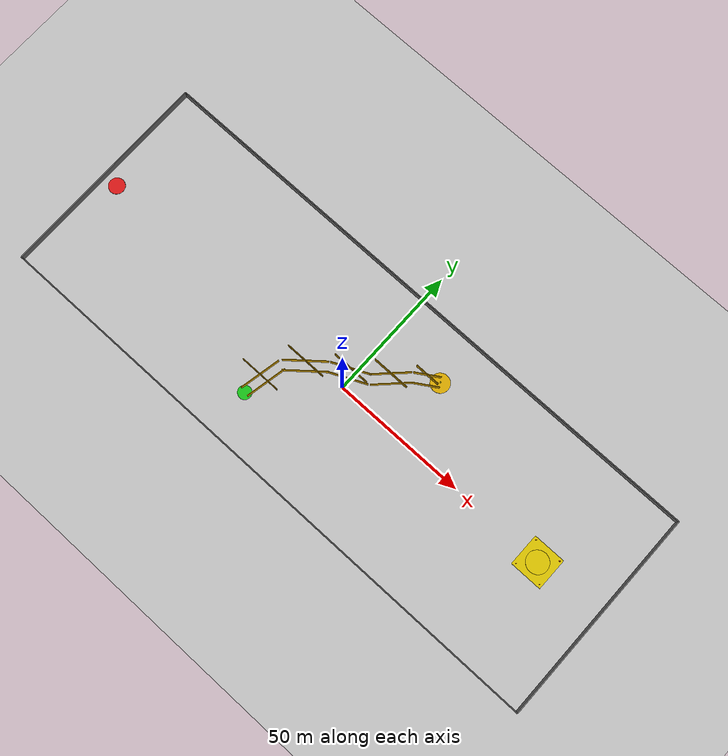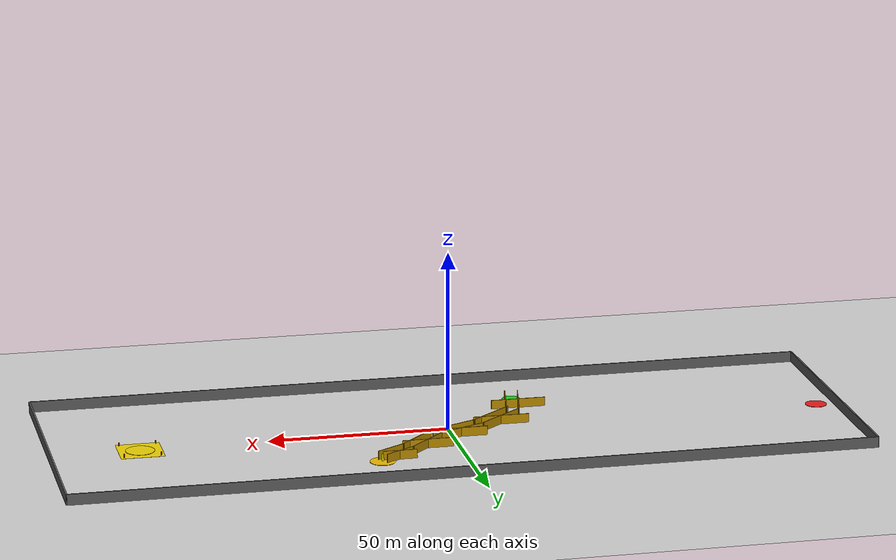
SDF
<sdf version="1.6">
 <world name="navitas_arena">
  <physics type="ode">
   <max_step_size>0.001</max_step_size>
   <real_time_factor>1</real_time_factor>
   <real_time_update_rate>1000</real_time_update_rate>
   <gravity>0 0 -9.8</gravity>
  </physics>
  <scene><ambient>0.4 0.4 0.4 1</ambient><background>0.7 0.7 0.7 1</background><shadows>true</shadows></scene>
  <light name="sun" type="directional">
   <pose>0 0 100 0 -0 0</pose>
   <diffuse>0.8 0.8 0.8 1</diffuse>
   <specular>0.1 0.1 0.1 1</specular>
   <attenuation>
    <range>1000</range>
    <constant>0.9</constant>
    <linear>0.01</linear>
    <quadratic>0.001</quadratic>
   </attenuation>
   <direction>-0.5 0.1 -0.9</direction>
  </light>
  <model name="ground_plane">
   <static>true</static>
   <link name="link">
    <collision name="collision">
     <geometry><plane><normal>0 0 1</normal><size>300 300</size></plane></geometry>
     <surface><friction><ode><mu>0.8</mu><mu2>0.8</mu2></ode></friction></surface>
    </collision>
    <visual name="visual">
     <cast_shadows>false</cast_shadows>
     <geometry><plane><normal>0 0 1</normal><size>300 300</size></plane></geometry>
     <material>
      <script><uri>file://media/materials/scripts/gazebo.material</uri><name>Gazebo/Grey</name></script>
     </material>
    </visual>
   </link>
  </model>
  <model name="boundary_N">
   <static>true</static>
   <pose>0 40.0 1.5 0 0 0</pose>
   <link name="link">
    <collision name="col"><geometry><box><size>220.0 0.4 3.0</size></box></geometry></collision>
    <visual name="vis">
     <geometry><box><size>220.0 0.4 3.0</size></box></geometry>
     <material><ambient>0.4 0.4 0.4 1</ambient><diffuse>0.4 0.4 0.4 1</diffuse></material>
    </visual>
   </link>
  </model>
  <model name="boundary_S">
   <static>true</static>
   <pose>0 -40.0 1.5 0 0 0</pose>
   <link name="link">
    <collision name="col"><geometry><box><size>220.0 0.4 3.0</size></box></geometry></collision>
    <visual name="vis">
     <geometry><box><size>220.0 0.4 3.0</size></box></geometry>
     <material><ambient>0.4 0.4 0.4 1</ambient><diffuse>0.4 0.4 0.4 1</diffuse></material>
    </visual>
   </link>
  </model>
  <model name="boundary_W">
   <static>true</static>
   <pose>-110.0 0 1.5 0 0 0</pose>
   <link name="link">
    <collision name="col"><geometry><box><size>0.4 80.0 3.0</size></box></geometry></collision>
    <visual name="vis">
     <geometry><box><size>0.4 80.0 3.0</size></box></geometry>
     <material><ambient>0.4 0.4 0.4 1</ambient><diffuse>0.4 0.4 0.4 1</diffuse></material>
    </visual>
   </link>
  </model>
  <model name="boundary_E">
   <static>true</static>
   <pose>110.0 0 1.5 0 0 0</pose>
   <link name="link">
    <collision name="col"><geometry><box><size>0.4 80.0 3.0</size></box></geometry></collision>
    <visual name="vis">
     <geometry><box><size>0.4 80.0 3.0</size></box></geometry>
     <material><ambient>0.4 0.4 0.4 1</ambient><diffuse>0.4 0.4 0.4 1</diffuse></material>
    </visual>
   </link>
  </model>
  <model name="iha_fb_marker">
   <static>true</static>
   <pose>-105.0 0.0 0.05 0 0 0</pose>
   <link name="link">
    <collision name="col">
     <geometry><cylinder><radius>3.0</radius><length>0.1</length></cylinder></geometry>
    </collision>
    <visual name="vis">
     <geometry><cylinder><radius>3.0</radius><length>0.1</length></cylinder></geometry>
     <material><ambient>0.9 0.1 0.1 1</ambient><diffuse>0.9 0.1 0.1 1</diffuse></material>
    </visual>
   </link>
  </model>
  <model name="iha_ib_marker">
   <static>true</static>
   <pose>85.0 0.0 0.05 0 0 0</pose>
   <link name="link">
    <collision name="col">
     <geometry><cylinder><radius>4.0</radius><length>0.1</length></cylinder></geometry>
    </collision>
    <visual name="vis">
     <geometry><cylinder><radius>4.0</radius><length>0.1</length></cylinder></geometry>
     <material><ambient>0.9 0.8 0.0 1</ambient><diffuse>0.9 0.8 0.0 1</diffuse></material>
    </visual>
   </link>
  </model>
  <model name="ika_kb_marker">
   <static>true</static>
   <pose>-23.0 -23.0 0.05 0 0 0</pose>
   <link name="link">
    <collision name="col">
     <geometry><cylinder><radius>2.5</radius><length>0.1</length></cylinder></geometry>
    </collision>
    <visual name="vis">
     <geometry><cylinder><radius>2.5</radius><length>0.1</length></cylinder></geometry>
     <material><ambient>0.1 0.8 0.1 1</ambient><diffuse>0.1 0.8 0.1 1</diffuse></material>
    </visual>
   </link>
  </model>
  <model name="hb_marker">
   <static>true</static>
   <pose>23.0 23.0 0.05 0 0 0</pose>
   <link name="link">
    <collision name="col">
     <geometry><cylinder><radius>3.5</radius><length>0.1</length></cylinder></geometry>
    </collision>
    <visual name="vis">
     <geometry><cylinder><radius>3.5</radius><length>0.1</length></cylinder></geometry>
     <material><ambient>0.9 0.7 0.0 1</ambient><diffuse>0.9 0.7 0.0 1</diffuse></material>
    </visual>
   </link>
  </model>
  <model name="hb_sign">
   <static>true</static>
   <pose>23.0 23.0 1.2 0 0 0</pose>
   <link name="link">
    <collision name="col"><geometry><box><size>0.5 0.05 2.0</size></box></geometry></collision>
    <visual name="vis">
     <geometry><box><size>0.5 0.05 2.0</size></box></geometry>
     <material><ambient>0.9 0.9 0.0 1</ambient><diffuse>0.9 0.9 0.0 1</diffuse></material>
    </visual>
   </link>
  </model>
  <model name="landing_ground">
   <static>true</static>
   <pose>85.0 0.0 0.01 0 0 0</pose>
   <link name="link">
    <collision name="col"><geometry><box><size>12.0 12.0 0.02</size></box></geometry></collision>
    <visual name="vis">
     <geometry><box><size>12.0 12.0 0.02</size></box></geometry>
     <material><ambient>0.9 0.8 0.0 1</ambient><diffuse>0.9 0.8 0.0 1</diffuse></material>
    </visual>
   </link>
  </model>
  <model name="landing_cone_0">
   <static>true</static>
   <pose>80.0 -5.0 0.5 0 0 0</pose>
   <link name="link">
    <collision name="col">
     <geometry><cylinder><radius>0.15</radius><length>1.0</length></cylinder></geometry>
    </collision>
    <visual name="vis">
     <geometry><cylinder><radius>0.15</radius><length>1.0</length></cylinder></geometry>
     <material><ambient>1.0 0.2 0.0 1</ambient><diffuse>1.0 0.2 0.0 1</diffuse></material>
    </visual>
   </link>
  </model>
  <model name="landing_cone_1">
   <static>true</static>
   <pose>80.0 5.0 0.5 0 0 0</pose>
   <link name="link">
    <collision name="col">
     <geometry><cylinder><radius>0.15</radius><length>1.0</length></cylinder></geometry>
    </collision>
    <visual name="vis">
     <geometry><cylinder><radius>0.15</radius><length>1.0</length></cylinder></geometry>
     <material><ambient>1.0 0.2 0.0 1</ambient><diffuse>1.0 0.2 0.0 1</diffuse></material>
    </visual>
   </link>
  </model>
  <model name="landing_cone_2">
   <static>true</static>
   <pose>90.0 -5.0 0.5 0 0 0</pose>
   <link name="link">
    <collision name="col">
     <geometry><cylinder><radius>0.15</radius><length>1.0</length></cylinder></geometry>
    </collision>
    <visual name="vis">
     <geometry><cylinder><radius>0.15</radius><length>1.0</length></cylinder></geometry>
     <material><ambient>1.0 0.2 0.0 1</ambient><diffuse>1.0 0.2 0.0 1</diffuse></material>
    </visual>
   </link>
  </model>
  <model name="landing_cone_3">
   <static>true</static>
   <pose>90.0 5.0 0.5 0 0 0</pose>
   <link name="link">
    <collision name="col">
     <geometry><cylinder><radius>0.15</radius><length>1.0</length></cylinder></geometry>
    </collision>
    <visual name="vis">
     <geometry><cylinder><radius>0.15</radius><length>1.0</length></cylinder></geometry>
     <material><ambient>1.0 0.2 0.0 1</ambient><diffuse>1.0 0.2 0.0 1</diffuse></material>
    </visual>
   </link>
  </model>
  <model name="ika_wall_L_0">
   <static>true</static>
   <pose>-23.21601618245911 -15.156796763508178 1.25 0 0 0</pose>
   <link name="link">
    <collision name="col"><geometry><box><size>15.297058540778355 0.2 2.5</size></box></geometry></collision>
    <visual name="vis">
     <geometry><box><size>15.297058540778355 0.2 2.5</size></box></geometry>
     <material><ambient>0.8 0.6 0.0 1</ambient><diffuse>0.8 0.6 0.0 1</diffuse></material>
    </visual>
   </link>
  </model>
  <model name="ika_wall_R_0">
   <static>true</static>
   <pose>-19.78398381754089 -15.843203236491822 1.25 0 0 1.373400766945016</pose>
   <link name="link">
    <collision name="col"><geometry><box><size>15.297058540778355 0.2 2.5</size></box></geometry></collision>
    <visual name="vis">
     <geometry><box><size>15.297058540778355 0.2 2.5</size></box></geometry>
     <material><ambient>0.8 0.6 0.0 1</ambient><diffuse>0.8 0.6 0.0 1</diffuse></material>
    </visual>
   </link>
  </model>
  <model name="ika_wall_L2_0">
   <static>true</static>
   <pose>-23.21601618245911 -15.156796763508178 1.25 0 0 1.373400766945016</pose>
   <link name="link">
    <collision name="col"><geometry><box><size>15.297058540778355 0.2 2.5</size></box></geometry></collision>
    <visual name="vis">
     <geometry><box><size>15.297058540778355 0.2 2.5</size></box></geometry>
     <material><ambient>0.8 0.6 0.0 1</ambient><diffuse>0.8 0.6 0.0 1</diffuse></material>
    </visual>
   </link>
  </model>
  <model name="ika_wall_L_1">
   <static>true</static>
   <pose>-15.12032269941284 -1.6556127607045923 1.25 0 0 0</pose>
   <link name="link">
    <collision name="col"><geometry><box><size>15.620499351813308 0.2 2.5</size></box></geometry></collision>
    <visual name="vis">
     <geometry><box><size>15.620499351813308 0.2 2.5</size></box></geometry>
     <material><ambient>0.8 0.6 0.0 1</ambient><diffuse>0.8 0.6 0.0 1</diffuse></material>
    </visual>
   </link>
  </model>
  <model name="ika_wall_R_1">
   <static>true</static>
   <pose>-12.87967730058716 -4.344387239295408 1.25 0 0 0.6947382761967031</pose>
   <link name="link">
    <collision name="col"><geometry><box><size>15.620499351813308 0.2 2.5</size></box></geometry></collision>
    <visual name="vis">
     <geometry><box><size>15.620499351813308 0.2 2.5</size></box></geometry>
     <material><ambient>0.8 0.6 0.0 1</ambient><diffuse>0.8 0.6 0.0 1</diffuse></material>
    </visual>
   </link>
  </model>
  <model name="ika_wall_L2_1">
   <static>true</static>
   <pose>-15.12032269941284 -1.6556127607045923 1.25 0 0 0.6947382761967031</pose>
   <link name="link">
    <collision name="col"><geometry><box><size>15.620499351813308 0.2 2.5</size></box></geometry></collision>
    <visual name="vis">
     <geometry><box><size>15.620499351813308 0.2 2.5</size></box></geometry>
     <material><ambient>0.8 0.6 0.0 1</ambient><diffuse>0.8 0.6 0.0 1</diffuse></material>
    </visual>
   </link>
  </model>
  <model name="ika_wall_L_2">
   <static>true</static>
   <pose>-2.233351810558057 6.58892892287579 1.25 0 0 0</pose>
   <link name="link">
    <collision name="col"><geometry><box><size>14.317821063276353 0.2 2.5</size></box></geometry></collision>
    <visual name="vis">
     <geometry><box><size>14.317821063276353 0.2 2.5</size></box></geometry>
     <material><ambient>0.8 0.6 0.0 1</ambient><diffuse>0.8 0.6 0.0 1</diffuse></material>
    </visual>
   </link>
  </model>
  <model name="ika_wall_R_2">
   <static>true</static>
   <pose>-0.7666481894419429 3.41107107712421 1.25 0 0 0.43240777557053783</pose>
   <link name="link">
    <collision name="col"><geometry><box><size>14.317821063276353 0.2 2.5</size></box></geometry></collision>
    <visual name="vis">
     <geometry><box><size>14.317821063276353 0.2 2.5</size></box></geometry>
     <material><ambient>0.8 0.6 0.0 1</ambient><diffuse>0.8 0.6 0.0 1</diffuse></material>
    </visual>
   </link>
  </model>
  <model name="ika_wall_L2_2">
   <static>true</static>
   <pose>-2.233351810558057 6.58892892287579 1.25 0 0 0.43240777557053783</pose>
   <link name="link">
    <collision name="col"><geometry><box><size>14.317821063276353 0.2 2.5</size></box></geometry></collision>
    <visual name="vis">
     <geometry><box><size>14.317821063276353 0.2 2.5</size></box></geometry>
     <material><ambient>0.8 0.6 0.0 1</ambient><diffuse>0.8 0.6 0.0 1</diffuse></material>
    </visual>
   </link>
  </model>
  <model name="ika_wall_L_3">
   <static>true</static>
   <pose>8.762563132923542 14.237436867076458 1.25 0 0 0</pose>
   <link name="link">
    <collision name="col"><geometry><box><size>14.142135623730951 0.2 2.5</size></box></geometry></collision>
    <visual name="vis">
     <geometry><box><size>14.142135623730951 0.2 2.5</size></box></geometry>
     <material><ambient>0.8 0.6 0.0 1</ambient><diffuse>0.8 0.6 0.0 1</diffuse></material>
    </visual>
   </link>
  </model>
  <model name="ika_wall_R_3">
   <static>true</static>
   <pose>11.237436867076458 11.762563132923542 1.25 0 0 0.7853981633974483</pose>
   <link name="link">
    <collision name="col"><geometry><box><size>14.142135623730951 0.2 2.5</size></box></geometry></collision>
    <visual name="vis">
     <geometry><box><size>14.142135623730951 0.2 2.5</size></box></geometry>
     <material><ambient>0.8 0.6 0.0 1</ambient><diffuse>0.8 0.6 0.0 1</diffuse></material>
    </visual>
   </link>
  </model>
  <model name="ika_wall_L2_3">
   <static>true</static>
   <pose>8.762563132923542 14.237436867076458 1.25 0 0 0.7853981633974483</pose>
   <link name="link">
    <collision name="col"><geometry><box><size>14.142135623730951 0.2 2.5</size></box></geometry></collision>
    <visual name="vis">
     <geometry><box><size>14.142135623730951 0.2 2.5</size></box></geometry>
     <material><ambient>0.8 0.6 0.0 1</ambient><diffuse>0.8 0.6 0.0 1</diffuse></material>
    </visual>
   </link>
  </model>
  <model name="ika_wall_L_4">
   <static>true</static>
   <pose>18.072501854994435 21.983997032008904 1.25 0 0 0</pose>
   <link name="link">
    <collision name="col"><geometry><box><size>9.433981132056603 0.2 2.5</size></box></geometry></collision>
    <visual name="vis">
     <geometry><box><size>9.433981132056603 0.2 2.5</size></box></geometry>
     <material><ambient>0.8 0.6 0.0 1</ambient><diffuse>0.8 0.6 0.0 1</diffuse></material>
    </visual>
   </link>
  </model>
  <model name="ika_wall_R_4">
   <static>true</static>
   <pose>19.927498145005565 19.016002967991096 1.25 0 0 0.5585993153435624</pose>
   <link name="link">
    <collision name="col"><geometry><box><size>9.433981132056603 0.2 2.5</size></box></geometry></collision>
    <visual name="vis">
     <geometry><box><size>9.433981132056603 0.2 2.5</size></box></geometry>
     <material><ambient>0.8 0.6 0.0 1</ambient><diffuse>0.8 0.6 0.0 1</diffuse></material>
    </visual>
   </link>
  </model>
  <model name="ika_wall_L2_4">
   <static>true</static>
   <pose>18.072501854994435 21.983997032008904 1.25 0 0 0.5585993153435624</pose>
   <link name="link">
    <collision name="col"><geometry><box><size>9.433981132056603 0.2 2.5</size></box></geometry></collision>
    <visual name="vis">
     <geometry><box><size>9.433981132056603 0.2 2.5</size></box></geometry>
     <material><ambient>0.8 0.6 0.0 1</ambient><diffuse>0.8 0.6 0.0 1</diffuse></material>
    </visual>
   </link>
  </model>
 </world>
</sdf>
